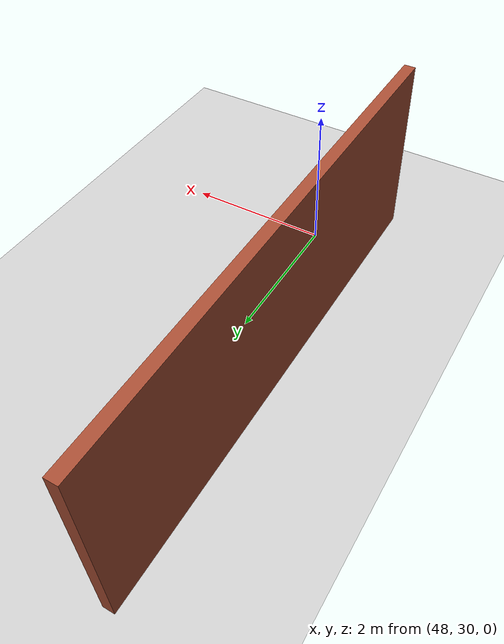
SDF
<sdf version="1.6">
 <world name="default">
  <model name="map_palace_v2_model_1">
   <pose>0 60 0 0 -0 0</pose>
   <link name="Wall_277">
    <collision name="Wall_277_Collision">
     <geometry><box><size>6.75 0.15 2.5</size></box></geometry>
     <pose>0 0 1.25 0 -0 0</pose>
    </collision>
    <visual name="Wall_277_Visual">
     <pose>0 0 1.25 0 -0 0</pose>
     <geometry><box><size>6.75 0.15 2.5</size></box></geometry>
     <material>
      <script><uri>file://media/materials/scripts/gazebo.material</uri><name>Gazebo/Bricks</name></script>
      <ambient>1 1 1 1</ambient>
     </material>
     <meta><layer>0</layer></meta>
    </visual>
    <pose>47.2274 -27.5415 0 0 -0 -1.5708</pose>
   </link>
   <static>1</static>
  </model>
  <model name="ground_plane">
   <static>1</static>
   <link name="link">
    <collision name="collision">
     <geometry><plane><normal>0 0 1</normal><size>100 100</size></plane></geometry>
     <surface>
      <contact><collide_bitmask>65535</collide_bitmask></contact>
      <friction><ode><mu>100</mu><mu2>50</mu2></ode></friction>
     </surface>
    </collision>
    <visual name="visual">
     <cast_shadows>0</cast_shadows>
     <geometry><plane><normal>0 0 1</normal><size>100 100</size></plane></geometry>
     <material>
      <script><uri>file://media/materials/scripts/gazebo.material</uri><name>Gazebo/Grey</name></script>
     </material>
    </visual>
   </link>
   <pose>9.31394 52.073 0 0 -0 0</pose>
  </model>
 </world>
</sdf>
